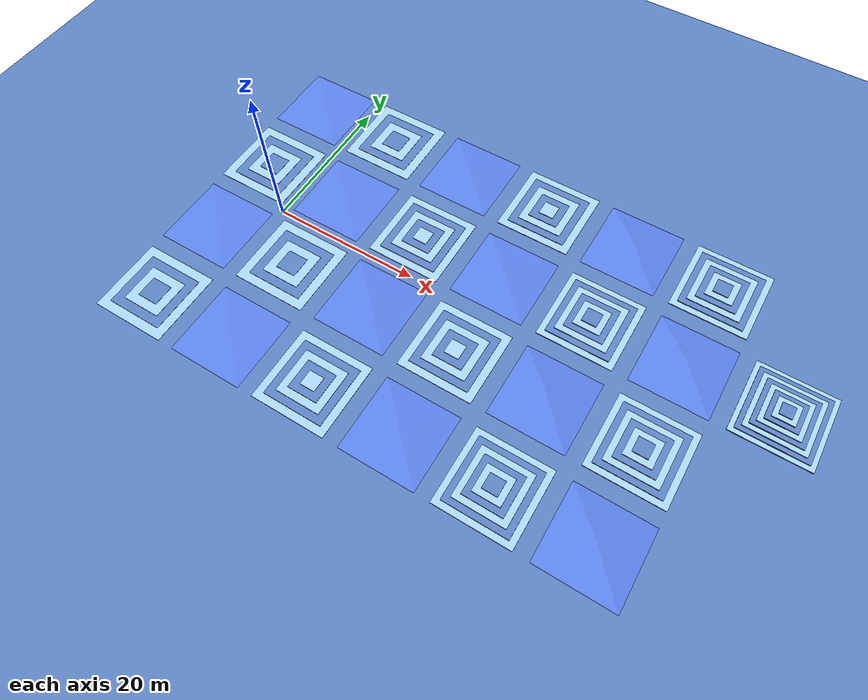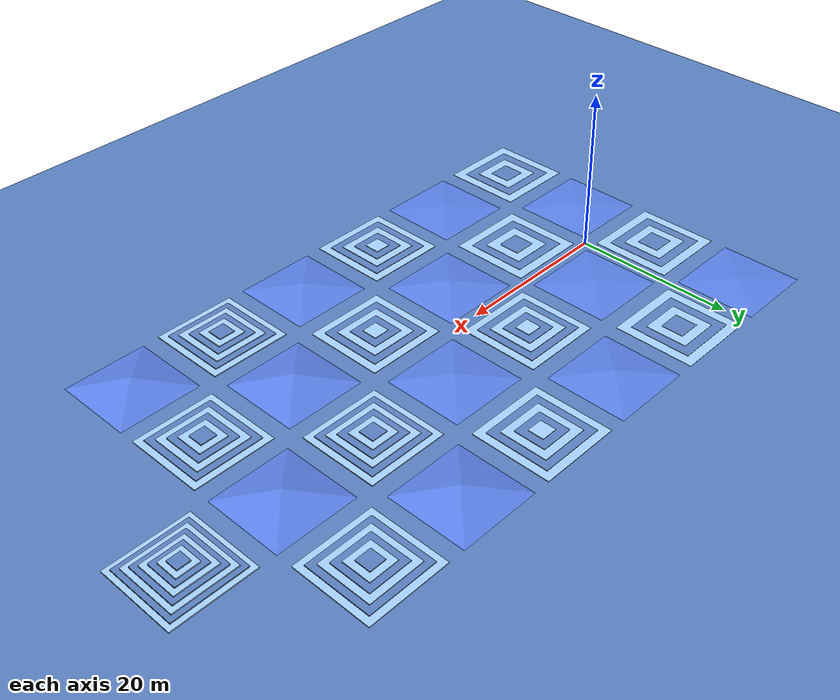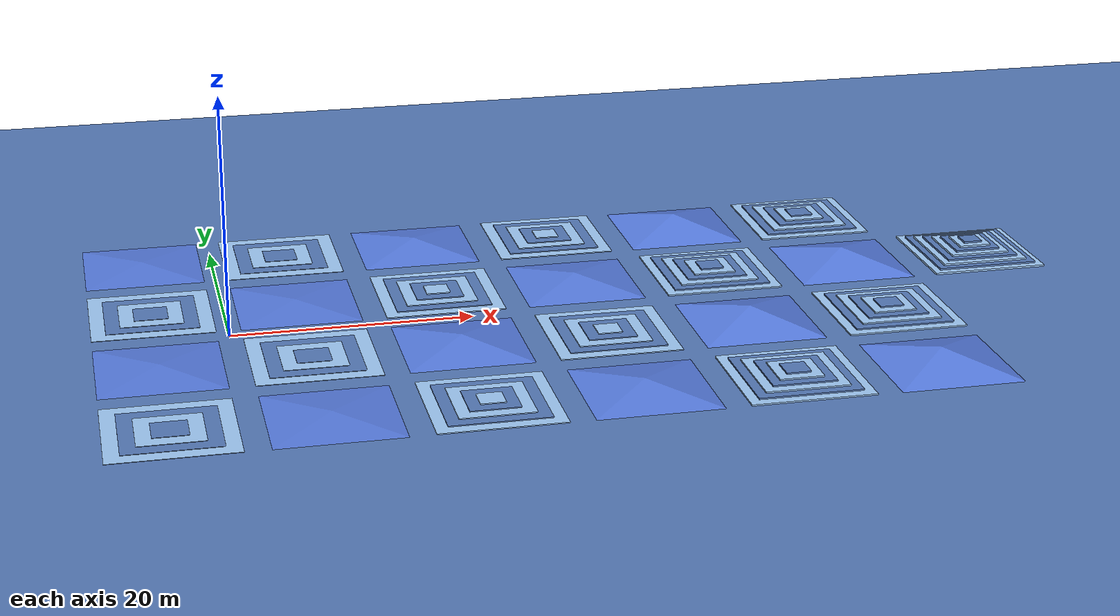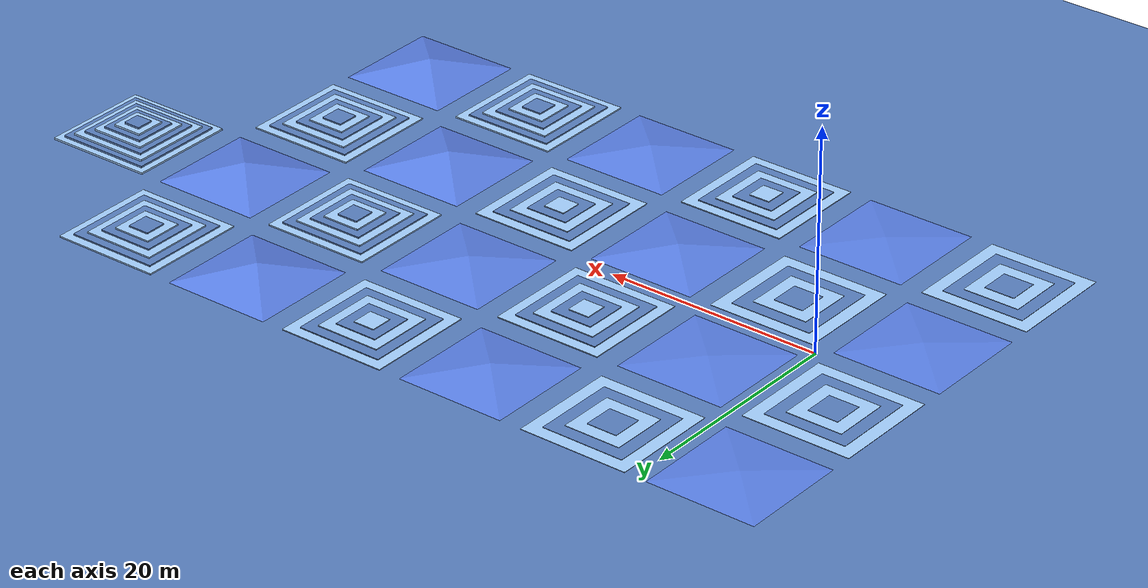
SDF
<sdf version="1.6">
 <world name="mixed_world">
  <model name="ground_plane">
   <static>true</static>
   <link name="link">
    <collision name="collision">
     <geometry><plane><normal>0 0 1</normal><size>500 500</size></plane></geometry>
     <surface><friction><ode><mu>0.8</mu><mu2>0.8</mu2></ode></friction></surface>
    </collision>
    <visual name="visual">
     <geometry><plane><normal>0 0 1</normal><size>500 500</size></plane></geometry>
     <material><ambient>0.35 0.5 0.75 1</ambient><diffuse>0.35 0.5 0.75 1</diffuse></material>
    </visual>
   </link>
  </model>
  <model name="pyramid_lvl0_stairs_1">
   <static>true</static>
   <pose>-6 6 0 0 0 0</pose>
   <link name="s1">
    <pose>0 0 0.02 0 0 0</pose>
    <collision name="c">
     <geometry><box><size>10 10 0.04</size></box></geometry>
     <surface><friction><ode><mu>0.8</mu><mu2>0.8</mu2></ode></friction></surface>
    </collision>
    <visual name="v">
     <geometry><box><size>10 10 0.04</size></box></geometry>
     <material><ambient>0.65 0.82 1 1</ambient><diffuse>0.65 0.82 1 1</diffuse></material>
    </visual>
   </link>
   <link name="s2">
    <pose>0 0 0.06 0 0 0</pose>
    <collision name="c">
     <geometry><box><size>7.6 7.6 0.04</size></box></geometry>
     <surface><friction><ode><mu>0.8</mu><mu2>0.8</mu2></ode></friction></surface>
    </collision>
    <visual name="v">
     <geometry><box><size>7.6 7.6 0.04</size></box></geometry>
     <material><ambient>0.35 0.5 0.75 1</ambient><diffuse>0.35 0.5 0.75 1</diffuse></material>
    </visual>
   </link>
   <link name="s3">
    <pose>0 0 0.10 0 0 0</pose>
    <collision name="c">
     <geometry><box><size>5.2 5.2 0.04</size></box></geometry>
     <surface><friction><ode><mu>0.8</mu><mu2>0.8</mu2></ode></friction></surface>
    </collision>
    <visual name="v">
     <geometry><box><size>5.2 5.2 0.04</size></box></geometry>
     <material><ambient>0.65 0.82 1 1</ambient><diffuse>0.65 0.82 1 1</diffuse></material>
    </visual>
   </link>
   <link name="s4">
    <pose>0 0 0.14 0 0 0</pose>
    <collision name="c">
     <geometry><box><size>2.8 2.8 0.04</size></box></geometry>
     <surface><friction><ode><mu>0.8</mu><mu2>0.8</mu2></ode></friction></surface>
    </collision>
    <visual name="v">
     <geometry><box><size>2.8 2.8 0.04</size></box></geometry>
     <material><ambient>0.35 0.5 0.75 1</ambient><diffuse>0.35 0.5 0.75 1</diffuse></material>
    </visual>
   </link>
  </model>
  <model name="pyramid_lvl0_slope_2">
   <static>true</static>
   <pose>-6 -6 0 0 0 0</pose>
   <link name="slope">
    <collision name="c">
     <geometry><mesh><uri>model://kyon_urdf/meshes/pyramid_slope_05deg_10x10.stl</uri></mesh></geometry>
     <surface><friction><ode><mu>0.7</mu><mu2>0.7</mu2></ode></friction></surface>
    </collision>
    <visual name="v">
     <geometry><mesh><uri>model://kyon_urdf/meshes/pyramid_slope_05deg_10x10.stl</uri></mesh></geometry>
     <material><ambient>0.35 0.5 0.9 1</ambient><diffuse>0.35 0.5 0.9 1</diffuse></material>
    </visual>
   </link>
  </model>
  <model name="pyramid_lvl0_stairs_3">
   <static>true</static>
   <pose>6 -6 0 0 0 0</pose>
   <link name="s1">
    <pose>0 0 0.02 0 0 0</pose>
    <collision name="c">
     <geometry><box><size>10 10 0.04</size></box></geometry>
     <surface><friction><ode><mu>0.8</mu><mu2>0.8</mu2></ode></friction></surface>
    </collision>
    <visual name="v">
     <geometry><box><size>10 10 0.04</size></box></geometry>
     <material><ambient>0.65 0.82 1 1</ambient><diffuse>0.65 0.82 1 1</diffuse></material>
    </visual>
   </link>
   <link name="s2">
    <pose>0 0 0.06 0 0 0</pose>
    <collision name="c">
     <geometry><box><size>7.6 7.6 0.04</size></box></geometry>
     <surface><friction><ode><mu>0.8</mu><mu2>0.8</mu2></ode></friction></surface>
    </collision>
    <visual name="v">
     <geometry><box><size>7.6 7.6 0.04</size></box></geometry>
     <material><ambient>0.35 0.5 0.75 1</ambient><diffuse>0.35 0.5 0.75 1</diffuse></material>
    </visual>
   </link>
   <link name="s3">
    <pose>0 0 0.10 0 0 0</pose>
    <collision name="c">
     <geometry><box><size>5.2 5.2 0.04</size></box></geometry>
     <surface><friction><ode><mu>0.8</mu><mu2>0.8</mu2></ode></friction></surface>
    </collision>
    <visual name="v">
     <geometry><box><size>5.2 5.2 0.04</size></box></geometry>
     <material><ambient>0.65 0.82 1 1</ambient><diffuse>0.65 0.82 1 1</diffuse></material>
    </visual>
   </link>
   <link name="s4">
    <pose>0 0 0.14 0 0 0</pose>
    <collision name="c">
     <geometry><box><size>2.8 2.8 0.04</size></box></geometry>
     <surface><friction><ode><mu>0.8</mu><mu2>0.8</mu2></ode></friction></surface>
    </collision>
    <visual name="v">
     <geometry><box><size>2.8 2.8 0.04</size></box></geometry>
     <material><ambient>0.35 0.5 0.75 1</ambient><diffuse>0.35 0.5 0.75 1</diffuse></material>
    </visual>
   </link>
  </model>
  <model name="pyramid_lvl0_slope_4">
   <static>true</static>
   <pose>6 6 0 0 0 0</pose>
   <link name="slope">
    <collision name="c">
     <geometry><mesh><uri>model://kyon_urdf/meshes/pyramid_slope_05deg_10x10.stl</uri></mesh></geometry>
     <surface><friction><ode><mu>0.7</mu><mu2>0.7</mu2></ode></friction></surface>
    </collision>
    <visual name="v">
     <geometry><mesh><uri>model://kyon_urdf/meshes/pyramid_slope_05deg_10x10.stl</uri></mesh></geometry>
     <material><ambient>0.35 0.5 0.9 1</ambient><diffuse>0.35 0.5 0.9 1</diffuse></material>
    </visual>
   </link>
  </model>
  <model name="pyramid_lvl0_stairs_5">
   <static>true</static>
   <pose>-6 -18 0 0 0 0</pose>
   <link name="s1">
    <pose>0 0 0.02 0 0 0</pose>
    <collision name="c">
     <geometry><box><size>10 10 0.04</size></box></geometry>
     <surface><friction><ode><mu>0.8</mu><mu2>0.8</mu2></ode></friction></surface>
    </collision>
    <visual name="v">
     <geometry><box><size>10 10 0.04</size></box></geometry>
     <material><ambient>0.65 0.82 1 1</ambient><diffuse>0.65 0.82 1 1</diffuse></material>
    </visual>
   </link>
   <link name="s2">
    <pose>0 0 0.06 0 0 0</pose>
    <collision name="c">
     <geometry><box><size>7.6 7.6 0.04</size></box></geometry>
     <surface><friction><ode><mu>0.8</mu><mu2>0.8</mu2></ode></friction></surface>
    </collision>
    <visual name="v">
     <geometry><box><size>7.6 7.6 0.04</size></box></geometry>
     <material><ambient>0.35 0.5 0.75 1</ambient><diffuse>0.35 0.5 0.75 1</diffuse></material>
    </visual>
   </link>
   <link name="s3">
    <pose>0 0 0.10 0 0 0</pose>
    <collision name="c">
     <geometry><box><size>5.2 5.2 0.04</size></box></geometry>
     <surface><friction><ode><mu>0.8</mu><mu2>0.8</mu2></ode></friction></surface>
    </collision>
    <visual name="v">
     <geometry><box><size>5.2 5.2 0.04</size></box></geometry>
     <material><ambient>0.65 0.82 1 1</ambient><diffuse>0.65 0.82 1 1</diffuse></material>
    </visual>
   </link>
   <link name="s4">
    <pose>0 0 0.14 0 0 0</pose>
    <collision name="c">
     <geometry><box><size>2.8 2.8 0.04</size></box></geometry>
     <surface><friction><ode><mu>0.8</mu><mu2>0.8</mu2></ode></friction></surface>
    </collision>
    <visual name="v">
     <geometry><box><size>2.8 2.8 0.04</size></box></geometry>
     <material><ambient>0.35 0.5 0.75 1</ambient><diffuse>0.35 0.5 0.75 1</diffuse></material>
    </visual>
   </link>
  </model>
  <model name="pyramid_lvl0_slope_6">
   <static>true</static>
   <pose>6 -18 0 0 0 0</pose>
   <link name="slope">
    <collision name="c">
     <geometry><mesh><uri>model://kyon_urdf/meshes/pyramid_slope_05deg_10x10.stl</uri></mesh></geometry>
     <surface><friction><ode><mu>0.7</mu><mu2>0.7</mu2></ode></friction></surface>
    </collision>
    <visual name="v">
     <geometry><mesh><uri>model://kyon_urdf/meshes/pyramid_slope_05deg_10x10.stl</uri></mesh></geometry>
     <material><ambient>0.35 0.5 0.9 1</ambient><diffuse>0.35 0.5 0.9 1</diffuse></material>
    </visual>
   </link>
  </model>
  <model name="pyramid_lvl0_stairs_7">
   <static>true</static>
   <pose>6 18 0 0 0 0</pose>
   <link name="s1">
    <pose>0 0 0.02 0 0 0</pose>
    <collision name="c">
     <geometry><box><size>10 10 0.04</size></box></geometry>
     <surface><friction><ode><mu>0.8</mu><mu2>0.8</mu2></ode></friction></surface>
    </collision>
    <visual name="v">
     <geometry><box><size>10 10 0.04</size></box></geometry>
     <material><ambient>0.65 0.82 1 1</ambient><diffuse>0.65 0.82 1 1</diffuse></material>
    </visual>
   </link>
   <link name="s2">
    <pose>0 0 0.06 0 0 0</pose>
    <collision name="c">
     <geometry><box><size>7.6 7.6 0.04</size></box></geometry>
     <surface><friction><ode><mu>0.8</mu><mu2>0.8</mu2></ode></friction></surface>
    </collision>
    <visual name="v">
     <geometry><box><size>7.6 7.6 0.04</size></box></geometry>
     <material><ambient>0.35 0.5 0.75 1</ambient><diffuse>0.35 0.5 0.75 1</diffuse></material>
    </visual>
   </link>
   <link name="s3">
    <pose>0 0 0.10 0 0 0</pose>
    <collision name="c">
     <geometry><box><size>5.2 5.2 0.04</size></box></geometry>
     <surface><friction><ode><mu>0.8</mu><mu2>0.8</mu2></ode></friction></surface>
    </collision>
    <visual name="v">
     <geometry><box><size>5.2 5.2 0.04</size></box></geometry>
     <material><ambient>0.65 0.82 1 1</ambient><diffuse>0.65 0.82 1 1</diffuse></material>
    </visual>
   </link>
   <link name="s4">
    <pose>0 0 0.14 0 0 0</pose>
    <collision name="c">
     <geometry><box><size>2.8 2.8 0.04</size></box></geometry>
     <surface><friction><ode><mu>0.8</mu><mu2>0.8</mu2></ode></friction></surface>
    </collision>
    <visual name="v">
     <geometry><box><size>2.8 2.8 0.04</size></box></geometry>
     <material><ambient>0.35 0.5 0.75 1</ambient><diffuse>0.35 0.5 0.75 1</diffuse></material>
    </visual>
   </link>
  </model>
  <model name="pyramid_lvl0_slope_8">
   <static>true</static>
   <pose>-6 18 0 0 0 0</pose>
   <link name="slope">
    <collision name="c">
     <geometry><mesh><uri>model://kyon_urdf/meshes/pyramid_slope_05deg_10x10.stl</uri></mesh></geometry>
     <surface><friction><ode><mu>0.7</mu><mu2>0.7</mu2></ode></friction></surface>
    </collision>
    <visual name="v">
     <geometry><mesh><uri>model://kyon_urdf/meshes/pyramid_slope_05deg_10x10.stl</uri></mesh></geometry>
     <material><ambient>0.35 0.5 0.9 1</ambient><diffuse>0.35 0.5 0.9 1</diffuse></material>
    </visual>
   </link>
  </model>
  <model name="pyramid_lvl1_stairs_1">
   <static>true</static>
   <pose>18 6 0 0 0 0</pose>
   <link name="s1">
    <pose>0 0 0.04 0 0 0</pose>
    <collision name="c">
     <geometry><box><size>10 10 0.08</size></box></geometry>
     <surface><friction><ode><mu>0.8</mu><mu2>0.8</mu2></ode></friction></surface>
    </collision>
    <visual name="v">
     <geometry><box><size>10 10 0.08</size></box></geometry>
     <material><ambient>0.65 0.82 1 1</ambient><diffuse>0.65 0.82 1 1</diffuse></material>
    </visual>
   </link>
   <link name="s2">
    <pose>0 0 0.12 0 0 0</pose>
    <collision name="c">
     <geometry><box><size>8 8 0.08</size></box></geometry>
     <surface><friction><ode><mu>0.8</mu><mu2>0.8</mu2></ode></friction></surface>
    </collision>
    <visual name="v">
     <geometry><box><size>8 8 0.08</size></box></geometry>
     <material><ambient>0.35 0.5 0.75 1</ambient><diffuse>0.35 0.5 0.75 1</diffuse></material>
    </visual>
   </link>
   <link name="s3">
    <pose>0 0 0.20 0 0 0</pose>
    <collision name="c">
     <geometry><box><size>6 6 0.08</size></box></geometry>
     <surface><friction><ode><mu>0.8</mu><mu2>0.8</mu2></ode></friction></surface>
    </collision>
    <visual name="v">
     <geometry><box><size>6 6 0.08</size></box></geometry>
     <material><ambient>0.65 0.82 1 1</ambient><diffuse>0.65 0.82 1 1</diffuse></material>
    </visual>
   </link>
   <link name="s4">
    <pose>0 0 0.28 0 0 0</pose>
    <collision name="c">
     <geometry><box><size>4 4 0.08</size></box></geometry>
     <surface><friction><ode><mu>0.8</mu><mu2>0.8</mu2></ode></friction></surface>
    </collision>
    <visual name="v">
     <geometry><box><size>4 4 0.08</size></box></geometry>
     <material><ambient>0.35 0.5 0.75 1</ambient><diffuse>0.35 0.5 0.75 1</diffuse></material>
    </visual>
   </link>
   <link name="s5">
    <pose>0 0 0.36 0 0 0</pose>
    <collision name="c">
     <geometry><box><size>2 2 0.08</size></box></geometry>
     <surface><friction><ode><mu>0.8</mu><mu2>0.8</mu2></ode></friction></surface>
    </collision>
    <visual name="v">
     <geometry><box><size>2 2 0.08</size></box></geometry>
     <material><ambient>0.65 0.82 1 1</ambient><diffuse>0.65 0.82 1 1</diffuse></material>
    </visual>
   </link>
  </model>
  <model name="pyramid_lvl1_slope_2">
   <static>true</static>
   <pose>18 -6 0 0 0 0</pose>
   <link name="slope">
    <collision name="c">
     <geometry><mesh><uri>model://kyon_urdf/meshes/pyramid_slope_10deg_10x10.stl</uri></mesh></geometry>
     <surface><friction><ode><mu>0.7</mu><mu2>0.7</mu2></ode></friction></surface>
    </collision>
    <visual name="v">
     <geometry><mesh><uri>model://kyon_urdf/meshes/pyramid_slope_10deg_10x10.stl</uri></mesh></geometry>
     <material><ambient>0.35 0.5 0.9 1</ambient><diffuse>0.35 0.5 0.9 1</diffuse></material>
    </visual>
   </link>
  </model>
  <model name="pyramid_lvl1_stairs_3">
   <static>true</static>
   <pose>30 -6 0 0 0 0</pose>
   <link name="s1">
    <pose>0 0 0.04 0 0 0</pose>
    <collision name="c">
     <geometry><box><size>10 10 0.08</size></box></geometry>
     <surface><friction><ode><mu>0.8</mu><mu2>0.8</mu2></ode></friction></surface>
    </collision>
    <visual name="v">
     <geometry><box><size>10 10 0.08</size></box></geometry>
     <material><ambient>0.65 0.82 1 1</ambient><diffuse>0.65 0.82 1 1</diffuse></material>
    </visual>
   </link>
   <link name="s2">
    <pose>0 0 0.12 0 0 0</pose>
    <collision name="c">
     <geometry><box><size>8 8 0.08</size></box></geometry>
     <surface><friction><ode><mu>0.8</mu><mu2>0.8</mu2></ode></friction></surface>
    </collision>
    <visual name="v">
     <geometry><box><size>8 8 0.08</size></box></geometry>
     <material><ambient>0.35 0.5 0.75 1</ambient><diffuse>0.35 0.5 0.75 1</diffuse></material>
    </visual>
   </link>
   <link name="s3">
    <pose>0 0 0.20 0 0 0</pose>
    <collision name="c">
     <geometry><box><size>6 6 0.08</size></box></geometry>
     <surface><friction><ode><mu>0.8</mu><mu2>0.8</mu2></ode></friction></surface>
    </collision>
    <visual name="v">
     <geometry><box><size>6 6 0.08</size></box></geometry>
     <material><ambient>0.65 0.82 1 1</ambient><diffuse>0.65 0.82 1 1</diffuse></material>
    </visual>
   </link>
   <link name="s4">
    <pose>0 0 0.28 0 0 0</pose>
    <collision name="c">
     <geometry><box><size>4 4 0.08</size></box></geometry>
     <surface><friction><ode><mu>0.8</mu><mu2>0.8</mu2></ode></friction></surface>
    </collision>
    <visual name="v">
     <geometry><box><size>4 4 0.08</size></box></geometry>
     <material><ambient>0.35 0.5 0.75 1</ambient><diffuse>0.35 0.5 0.75 1</diffuse></material>
    </visual>
   </link>
   <link name="s5">
    <pose>0 0 0.36 0 0 0</pose>
    <collision name="c">
     <geometry><box><size>2 2 0.08</size></box></geometry>
     <surface><friction><ode><mu>0.8</mu><mu2>0.8</mu2></ode></friction></surface>
    </collision>
    <visual name="v">
     <geometry><box><size>2 2 0.08</size></box></geometry>
     <material><ambient>0.65 0.82 1 1</ambient><diffuse>0.65 0.82 1 1</diffuse></material>
    </visual>
   </link>
  </model>
  <model name="pyramid_lvl1_slope_4">
   <static>true</static>
   <pose>30 6 0 0 0 0</pose>
   <link name="slope">
    <collision name="c">
     <geometry><mesh><uri>model://kyon_urdf/meshes/pyramid_slope_10deg_10x10.stl</uri></mesh></geometry>
     <surface><friction><ode><mu>0.7</mu><mu2>0.7</mu2></ode></friction></surface>
    </collision>
    <visual name="v">
     <geometry><mesh><uri>model://kyon_urdf/meshes/pyramid_slope_10deg_10x10.stl</uri></mesh></geometry>
     <material><ambient>0.35 0.5 0.9 1</ambient><diffuse>0.35 0.5 0.9 1</diffuse></material>
    </visual>
   </link>
  </model>
  <model name="pyramid_lvl1_slope_5">
   <static>true</static>
   <pose>18 18 0 0 0 0</pose>
   <link name="slope">
    <collision name="c">
     <geometry><mesh><uri>model://kyon_urdf/meshes/pyramid_slope_10deg_10x10.stl</uri></mesh></geometry>
     <surface><friction><ode><mu>0.7</mu><mu2>0.7</mu2></ode></friction></surface>
    </collision>
    <visual name="v">
     <geometry><mesh><uri>model://kyon_urdf/meshes/pyramid_slope_10deg_10x10.stl</uri></mesh></geometry>
     <material><ambient>0.35 0.5 0.9 1</ambient><diffuse>0.35 0.5 0.9 1</diffuse></material>
    </visual>
   </link>
  </model>
  <model name="pyramid_lvl1_stairs_6">
   <static>true</static>
   <pose>30 18 0 0 0 0</pose>
   <link name="s1">
    <pose>0 0 0.04 0 0 0</pose>
    <collision name="c">
     <geometry><box><size>10 10 0.08</size></box></geometry>
     <surface><friction><ode><mu>0.8</mu><mu2>0.8</mu2></ode></friction></surface>
    </collision>
    <visual name="v">
     <geometry><box><size>10 10 0.08</size></box></geometry>
     <material><ambient>0.65 0.82 1 1</ambient><diffuse>0.65 0.82 1 1</diffuse></material>
    </visual>
   </link>
   <link name="s2">
    <pose>0 0 0.12 0 0 0</pose>
    <collision name="c">
     <geometry><box><size>8 8 0.08</size></box></geometry>
     <surface><friction><ode><mu>0.8</mu><mu2>0.8</mu2></ode></friction></surface>
    </collision>
    <visual name="v">
     <geometry><box><size>8 8 0.08</size></box></geometry>
     <material><ambient>0.35 0.5 0.75 1</ambient><diffuse>0.35 0.5 0.75 1</diffuse></material>
    </visual>
   </link>
   <link name="s3">
    <pose>0 0 0.20 0 0 0</pose>
    <collision name="c">
     <geometry><box><size>6 6 0.08</size></box></geometry>
     <surface><friction><ode><mu>0.8</mu><mu2>0.8</mu2></ode></friction></surface>
    </collision>
    <visual name="v">
     <geometry><box><size>6 6 0.08</size></box></geometry>
     <material><ambient>0.65 0.82 1 1</ambient><diffuse>0.65 0.82 1 1</diffuse></material>
    </visual>
   </link>
   <link name="s4">
    <pose>0 0 0.28 0 0 0</pose>
    <collision name="c">
     <geometry><box><size>4 4 0.08</size></box></geometry>
     <surface><friction><ode><mu>0.8</mu><mu2>0.8</mu2></ode></friction></surface>
    </collision>
    <visual name="v">
     <geometry><box><size>4 4 0.08</size></box></geometry>
     <material><ambient>0.35 0.5 0.75 1</ambient><diffuse>0.35 0.5 0.75 1</diffuse></material>
    </visual>
   </link>
   <link name="s5">
    <pose>0 0 0.36 0 0 0</pose>
    <collision name="c">
     <geometry><box><size>2 2 0.08</size></box></geometry>
     <surface><friction><ode><mu>0.8</mu><mu2>0.8</mu2></ode></friction></surface>
    </collision>
    <visual name="v">
     <geometry><box><size>2 2 0.08</size></box></geometry>
     <material><ambient>0.65 0.82 1 1</ambient><diffuse>0.65 0.82 1 1</diffuse></material>
    </visual>
   </link>
  </model>
  <model name="pyramid_lvl1_stairs_7">
   <static>true</static>
   <pose>18 -18 0 0 0 0</pose>
   <link name="s1">
    <pose>0 0 0.04 0 0 0</pose>
    <collision name="c">
     <geometry><box><size>10 10 0.08</size></box></geometry>
     <surface><friction><ode><mu>0.8</mu><mu2>0.8</mu2></ode></friction></surface>
    </collision>
    <visual name="v">
     <geometry><box><size>10 10 0.08</size></box></geometry>
     <material><ambient>0.65 0.82 1 1</ambient><diffuse>0.65 0.82 1 1</diffuse></material>
    </visual>
   </link>
   <link name="s2">
    <pose>0 0 0.12 0 0 0</pose>
    <collision name="c">
     <geometry><box><size>8 8 0.08</size></box></geometry>
     <surface><friction><ode><mu>0.8</mu><mu2>0.8</mu2></ode></friction></surface>
    </collision>
    <visual name="v">
     <geometry><box><size>8 8 0.08</size></box></geometry>
     <material><ambient>0.35 0.5 0.75 1</ambient><diffuse>0.35 0.5 0.75 1</diffuse></material>
    </visual>
   </link>
   <link name="s3">
    <pose>0 0 0.20 0 0 0</pose>
    <collision name="c">
     <geometry><box><size>6 6 0.08</size></box></geometry>
     <surface><friction><ode><mu>0.8</mu><mu2>0.8</mu2></ode></friction></surface>
    </collision>
    <visual name="v">
     <geometry><box><size>6 6 0.08</size></box></geometry>
     <material><ambient>0.65 0.82 1 1</ambient><diffuse>0.65 0.82 1 1</diffuse></material>
    </visual>
   </link>
   <link name="s4">
    <pose>0 0 0.28 0 0 0</pose>
    <collision name="c">
     <geometry><box><size>4 4 0.08</size></box></geometry>
     <surface><friction><ode><mu>0.8</mu><mu2>0.8</mu2></ode></friction></surface>
    </collision>
    <visual name="v">
     <geometry><box><size>4 4 0.08</size></box></geometry>
     <material><ambient>0.35 0.5 0.75 1</ambient><diffuse>0.35 0.5 0.75 1</diffuse></material>
    </visual>
   </link>
   <link name="s5">
    <pose>0 0 0.36 0 0 0</pose>
    <collision name="c">
     <geometry><box><size>2 2 0.08</size></box></geometry>
     <surface><friction><ode><mu>0.8</mu><mu2>0.8</mu2></ode></friction></surface>
    </collision>
    <visual name="v">
     <geometry><box><size>2 2 0.08</size></box></geometry>
     <material><ambient>0.65 0.82 1 1</ambient><diffuse>0.65 0.82 1 1</diffuse></material>
    </visual>
   </link>
  </model>
  <model name="pyramid_lvl1_slope_8">
   <static>true</static>
   <pose>30 -18 0 0 0 0</pose>
   <link name="slope">
    <collision name="c">
     <geometry><mesh><uri>model://kyon_urdf/meshes/pyramid_slope_10deg_10x10.stl</uri></mesh></geometry>
     <surface><friction><ode><mu>0.7</mu><mu2>0.7</mu2></ode></friction></surface>
    </collision>
    <visual name="v">
     <geometry><mesh><uri>model://kyon_urdf/meshes/pyramid_slope_10deg_10x10.stl</uri></mesh></geometry>
     <material><ambient>0.35 0.5 0.9 1</ambient><diffuse>0.35 0.5 0.9 1</diffuse></material>
    </visual>
   </link>
  </model>
  <model name="pyramid_lvl2_slope_1">
   <static>true</static>
   <pose>42 -6 0 0 0 0</pose>
   <link name="slope">
    <collision name="c">
     <geometry><mesh><uri>model://kyon_urdf/meshes/pyramid_slope_15deg_10x10.stl</uri></mesh></geometry>
     <surface><friction><ode><mu>0.7</mu><mu2>0.7</mu2></ode></friction></surface>
    </collision>
    <visual name="v">
     <geometry><mesh><uri>model://kyon_urdf/meshes/pyramid_slope_15deg_10x10.stl</uri></mesh></geometry>
     <material><ambient>0.35 0.5 0.9 1</ambient><diffuse>0.35 0.5 0.9 1</diffuse></material>
    </visual>
   </link>
  </model>
  <model name="pyramid_lvl2_stairs_2">
   <static>true</static>
   <pose>42 6 0 0 0 0</pose>
   <link name="s1">
    <pose>0 0 0.06 0 0 0</pose>
    <collision name="c">
     <geometry><box><size>10 10 0.12</size></box></geometry>
     <surface><friction><ode><mu>0.8</mu><mu2>0.8</mu2></ode></friction></surface>
    </collision>
    <visual name="v">
     <geometry><box><size>10 10 0.12</size></box></geometry>
     <material><ambient>0.65 0.82 1 1</ambient><diffuse>0.65 0.82 1 1</diffuse></material>
    </visual>
   </link>
   <link name="s2">
    <pose>0 0 0.18 0 0 0</pose>
    <collision name="c">
     <geometry><box><size>8.4 8.4 0.12</size></box></geometry>
     <surface><friction><ode><mu>0.8</mu><mu2>0.8</mu2></ode></friction></surface>
    </collision>
    <visual name="v">
     <geometry><box><size>8.4 8.4 0.12</size></box></geometry>
     <material><ambient>0.35 0.5 0.75 1</ambient><diffuse>0.35 0.5 0.75 1</diffuse></material>
    </visual>
   </link>
   <link name="s3">
    <pose>0 0 0.30 0 0 0</pose>
    <collision name="c">
     <geometry><box><size>6.8 6.8 0.12</size></box></geometry>
     <surface><friction><ode><mu>0.8</mu><mu2>0.8</mu2></ode></friction></surface>
    </collision>
    <visual name="v">
     <geometry><box><size>6.8 6.8 0.12</size></box></geometry>
     <material><ambient>0.65 0.82 1 1</ambient><diffuse>0.65 0.82 1 1</diffuse></material>
    </visual>
   </link>
   <link name="s4">
    <pose>0 0 0.42 0 0 0</pose>
    <collision name="c">
     <geometry><box><size>5.2 5.2 0.12</size></box></geometry>
     <surface><friction><ode><mu>0.8</mu><mu2>0.8</mu2></ode></friction></surface>
    </collision>
    <visual name="v">
     <geometry><box><size>5.2 5.2 0.12</size></box></geometry>
     <material><ambient>0.35 0.5 0.75 1</ambient><diffuse>0.35 0.5 0.75 1</diffuse></material>
    </visual>
   </link>
   <link name="s5">
    <pose>0 0 0.54 0 0 0</pose>
    <collision name="c">
     <geometry><box><size>3.6 3.6 0.12</size></box></geometry>
     <surface><friction><ode><mu>0.8</mu><mu2>0.8</mu2></ode></friction></surface>
    </collision>
    <visual name="v">
     <geometry><box><size>3.6 3.6 0.12</size></box></geometry>
     <material><ambient>0.65 0.82 1 1</ambient><diffuse>0.65 0.82 1 1</diffuse></material>
    </visual>
   </link>
   <link name="s6">
    <pose>0 0 0.66 0 0 0</pose>
    <collision name="c">
     <geometry><box><size>2 2 0.12</size></box></geometry>
     <surface><friction><ode><mu>0.8</mu><mu2>0.8</mu2></ode></friction></surface>
    </collision>
    <visual name="v">
     <geometry><box><size>2 2 0.12</size></box></geometry>
     <material><ambient>0.35 0.5 0.75 1</ambient><diffuse>0.35 0.5 0.75 1</diffuse></material>
    </visual>
   </link>
  </model>
  <model name="pyramid_lvl2_stairs_3">
   <static>true</static>
   <pose>54 -6 0 0 0 0</pose>
   <link name="s1">
    <pose>0 0 0.06 0 0 0</pose>
    <collision name="c">
     <geometry><box><size>10 10 0.12</size></box></geometry>
     <surface><friction><ode><mu>0.8</mu><mu2>0.8</mu2></ode></friction></surface>
    </collision>
    <visual name="v">
     <geometry><box><size>10 10 0.12</size></box></geometry>
     <material><ambient>0.65 0.82 1 1</ambient><diffuse>0.65 0.82 1 1</diffuse></material>
    </visual>
   </link>
   <link name="s2">
    <pose>0 0 0.18 0 0 0</pose>
    <collision name="c">
     <geometry><box><size>8.4 8.4 0.12</size></box></geometry>
     <surface><friction><ode><mu>0.8</mu><mu2>0.8</mu2></ode></friction></surface>
    </collision>
    <visual name="v">
     <geometry><box><size>8.4 8.4 0.12</size></box></geometry>
     <material><ambient>0.35 0.5 0.75 1</ambient><diffuse>0.35 0.5 0.75 1</diffuse></material>
    </visual>
   </link>
   <link name="s3">
    <pose>0 0 0.30 0 0 0</pose>
    <collision name="c">
     <geometry><box><size>6.8 6.8 0.12</size></box></geometry>
     <surface><friction><ode><mu>0.8</mu><mu2>0.8</mu2></ode></friction></surface>
    </collision>
    <visual name="v">
     <geometry><box><size>6.8 6.8 0.12</size></box></geometry>
     <material><ambient>0.65 0.82 1 1</ambient><diffuse>0.65 0.82 1 1</diffuse></material>
    </visual>
   </link>
   <link name="s4">
    <pose>0 0 0.42 0 0 0</pose>
    <collision name="c">
     <geometry><box><size>5.2 5.2 0.12</size></box></geometry>
     <surface><friction><ode><mu>0.8</mu><mu2>0.8</mu2></ode></friction></surface>
    </collision>
    <visual name="v">
     <geometry><box><size>5.2 5.2 0.12</size></box></geometry>
     <material><ambient>0.35 0.5 0.75 1</ambient><diffuse>0.35 0.5 0.75 1</diffuse></material>
    </visual>
   </link>
   <link name="s5">
    <pose>0 0 0.54 0 0 0</pose>
    <collision name="c">
     <geometry><box><size>3.6 3.6 0.12</size></box></geometry>
     <surface><friction><ode><mu>0.8</mu><mu2>0.8</mu2></ode></friction></surface>
    </collision>
    <visual name="v">
     <geometry><box><size>3.6 3.6 0.12</size></box></geometry>
     <material><ambient>0.65 0.82 1 1</ambient><diffuse>0.65 0.82 1 1</diffuse></material>
    </visual>
   </link>
   <link name="s6">
    <pose>0 0 0.66 0 0 0</pose>
    <collision name="c">
     <geometry><box><size>2 2 0.12</size></box></geometry>
     <surface><friction><ode><mu>0.8</mu><mu2>0.8</mu2></ode></friction></surface>
    </collision>
    <visual name="v">
     <geometry><box><size>2 2 0.12</size></box></geometry>
     <material><ambient>0.35 0.5 0.75 1</ambient><diffuse>0.35 0.5 0.75 1</diffuse></material>
    </visual>
   </link>
  </model>
  <model name="pyramid_lvl2_slope_4">
   <static>true</static>
   <pose>54 6 0 0 0 0</pose>
   <link name="slope">
    <collision name="c">
     <geometry><mesh><uri>model://kyon_urdf/meshes/pyramid_slope_15deg_10x10.stl</uri></mesh></geometry>
     <surface><friction><ode><mu>0.7</mu><mu2>0.7</mu2></ode></friction></surface>
    </collision>
    <visual name="v">
     <geometry><mesh><uri>model://kyon_urdf/meshes/pyramid_slope_15deg_10x10.stl</uri></mesh></geometry>
     <material><ambient>0.35 0.5 0.9 1</ambient><diffuse>0.35 0.5 0.9 1</diffuse></material>
    </visual>
   </link>
  </model>
  <model name="pyramid_lvl2_slope_5">
   <static>true</static>
   <pose>42 18 0 0 0 0</pose>
   <link name="slope">
    <collision name="c">
     <geometry><mesh><uri>model://kyon_urdf/meshes/pyramid_slope_15deg_10x10.stl</uri></mesh></geometry>
     <surface><friction><ode><mu>0.7</mu><mu2>0.7</mu2></ode></friction></surface>
    </collision>
    <visual name="v">
     <geometry><mesh><uri>model://kyon_urdf/meshes/pyramid_slope_15deg_10x10.stl</uri></mesh></geometry>
     <material><ambient>0.35 0.5 0.9 1</ambient><diffuse>0.35 0.5 0.9 1</diffuse></material>
    </visual>
   </link>
  </model>
  <model name="pyramid_lvl2_stairs_6">
   <static>true</static>
   <pose>54 18 0 0 0 0</pose>
   <link name="s1">
    <pose>0 0 0.06 0 0 0</pose>
    <collision name="c">
     <geometry><box><size>10 10 0.12</size></box></geometry>
     <surface><friction><ode><mu>0.8</mu><mu2>0.8</mu2></ode></friction></surface>
    </collision>
    <visual name="v">
     <geometry><box><size>10 10 0.12</size></box></geometry>
     <material><ambient>0.65 0.82 1 1</ambient><diffuse>0.65 0.82 1 1</diffuse></material>
    </visual>
   </link>
   <link name="s2">
    <pose>0 0 0.18 0 0 0</pose>
    <collision name="c">
     <geometry><box><size>8.4 8.4 0.12</size></box></geometry>
     <surface><friction><ode><mu>0.8</mu><mu2>0.8</mu2></ode></friction></surface>
    </collision>
    <visual name="v">
     <geometry><box><size>8.4 8.4 0.12</size></box></geometry>
     <material><ambient>0.35 0.5 0.75 1</ambient><diffuse>0.35 0.5 0.75 1</diffuse></material>
    </visual>
   </link>
   <link name="s3">
    <pose>0 0 0.30 0 0 0</pose>
    <collision name="c">
     <geometry><box><size>6.8 6.8 0.12</size></box></geometry>
     <surface><friction><ode><mu>0.8</mu><mu2>0.8</mu2></ode></friction></surface>
    </collision>
    <visual name="v">
     <geometry><box><size>6.8 6.8 0.12</size></box></geometry>
     <material><ambient>0.65 0.82 1 1</ambient><diffuse>0.65 0.82 1 1</diffuse></material>
    </visual>
   </link>
   <link name="s4">
    <pose>0 0 0.42 0 0 0</pose>
    <collision name="c">
     <geometry><box><size>5.2 5.2 0.12</size></box></geometry>
     <surface><friction><ode><mu>0.8</mu><mu2>0.8</mu2></ode></friction></surface>
    </collision>
    <visual name="v">
     <geometry><box><size>5.2 5.2 0.12</size></box></geometry>
     <material><ambient>0.35 0.5 0.75 1</ambient><diffuse>0.35 0.5 0.75 1</diffuse></material>
    </visual>
   </link>
   <link name="s5">
    <pose>0 0 0.54 0 0 0</pose>
    <collision name="c">
     <geometry><box><size>3.6 3.6 0.12</size></box></geometry>
     <surface><friction><ode><mu>0.8</mu><mu2>0.8</mu2></ode></friction></surface>
    </collision>
    <visual name="v">
     <geometry><box><size>3.6 3.6 0.12</size></box></geometry>
     <material><ambient>0.65 0.82 1 1</ambient><diffuse>0.65 0.82 1 1</diffuse></material>
    </visual>
   </link>
   <link name="s6">
    <pose>0 0 0.66 0 0 0</pose>
    <collision name="c">
     <geometry><box><size>2 2 0.12</size></box></geometry>
     <surface><friction><ode><mu>0.8</mu><mu2>0.8</mu2></ode></friction></surface>
    </collision>
    <visual name="v">
     <geometry><box><size>2 2 0.12</size></box></geometry>
     <material><ambient>0.35 0.5 0.75 1</ambient><diffuse>0.35 0.5 0.75 1</diffuse></material>
    </visual>
   </link>
  </model>
  <model name="pyramid_lvl2_stairs_7">
   <static>true</static>
   <pose>42 -18 0 0 0 0</pose>
   <link name="s1">
    <pose>0 0 0.06 0 0 0</pose>
    <collision name="c">
     <geometry><box><size>10 10 0.12</size></box></geometry>
     <surface><friction><ode><mu>0.8</mu><mu2>0.8</mu2></ode></friction></surface>
    </collision>
    <visual name="v">
     <geometry><box><size>10 10 0.12</size></box></geometry>
     <material><ambient>0.65 0.82 1 1</ambient><diffuse>0.65 0.82 1 1</diffuse></material>
    </visual>
   </link>
   <link name="s2">
    <pose>0 0 0.18 0 0 0</pose>
    <collision name="c">
     <geometry><box><size>8.4 8.4 0.12</size></box></geometry>
     <surface><friction><ode><mu>0.8</mu><mu2>0.8</mu2></ode></friction></surface>
    </collision>
    <visual name="v">
     <geometry><box><size>8.4 8.4 0.12</size></box></geometry>
     <material><ambient>0.35 0.5 0.75 1</ambient><diffuse>0.35 0.5 0.75 1</diffuse></material>
    </visual>
   </link>
   <link name="s3">
    <pose>0 0 0.30 0 0 0</pose>
    <collision name="c">
     <geometry><box><size>6.8 6.8 0.12</size></box></geometry>
     <surface><friction><ode><mu>0.8</mu><mu2>0.8</mu2></ode></friction></surface>
    </collision>
    <visual name="v">
     <geometry><box><size>6.8 6.8 0.12</size></box></geometry>
     <material><ambient>0.65 0.82 1 1</ambient><diffuse>0.65 0.82 1 1</diffuse></material>
    </visual>
   </link>
   <link name="s4">
    <pose>0 0 0.42 0 0 0</pose>
    <collision name="c">
     <geometry><box><size>5.2 5.2 0.12</size></box></geometry>
     <surface><friction><ode><mu>0.8</mu><mu2>0.8</mu2></ode></friction></surface>
    </collision>
    <visual name="v">
     <geometry><box><size>5.2 5.2 0.12</size></box></geometry>
     <material><ambient>0.35 0.5 0.75 1</ambient><diffuse>0.35 0.5 0.75 1</diffuse></material>
    </visual>
   </link>
   <link name="s5">
    <pose>0 0 0.54 0 0 0</pose>
    <collision name="c">
     <geometry><box><size>3.6 3.6 0.12</size></box></geometry>
     <surface><friction><ode><mu>0.8</mu><mu2>0.8</mu2></ode></friction></surface>
    </collision>
    <visual name="v">
     <geometry><box><size>3.6 3.6 0.12</size></box></geometry>
     <material><ambient>0.65 0.82 1 1</ambient><diffuse>0.65 0.82 1 1</diffuse></material>
    </visual>
   </link>
   <link name="s6">
    <pose>0 0 0.66 0 0 0</pose>
    <collision name="c">
     <geometry><box><size>2 2 0.12</size></box></geometry>
     <surface><friction><ode><mu>0.8</mu><mu2>0.8</mu2></ode></friction></surface>
    </collision>
    <visual name="v">
     <geometry><box><size>2 2 0.12</size></box></geometry>
     <material><ambient>0.35 0.5 0.75 1</ambient><diffuse>0.35 0.5 0.75 1</diffuse></material>
    </visual>
   </link>
  </model>
  <model name="pyramid_lvl2_slope_8">
   <static>true</static>
   <pose>54 -18 0 0 0 0</pose>
   <link name="slope">
    <collision name="c">
     <geometry><mesh><uri>model://kyon_urdf/meshes/pyramid_slope_15deg_10x10.stl</uri></mesh></geometry>
     <surface><friction><ode><mu>0.7</mu><mu2>0.7</mu2></ode></friction></surface>
    </collision>
    <visual name="v">
     <geometry><mesh><uri>model://kyon_urdf/meshes/pyramid_slope_15deg_10x10.stl</uri></mesh></geometry>
     <material><ambient>0.35 0.5 0.9 1</ambient><diffuse>0.35 0.5 0.9 1</diffuse></material>
    </visual>
   </link>
  </model>
  <model name="pyramid_lvl3_stairs_1">
   <static>true</static>
   <pose>66 6 0 0 0 0</pose>
   <link name="s1">
    <pose>0 0 0.08 0 0 0</pose>
    <collision name="c">
     <geometry><box><size>10 10 0.16</size></box></geometry>
     <surface><friction><ode><mu>0.8</mu><mu2>0.8</mu2></ode></friction></surface>
    </collision>
    <visual name="v">
     <geometry><box><size>10 10 0.16</size></box></geometry>
     <material><ambient>0.65 0.82 1 1</ambient><diffuse>0.65 0.82 1 1</diffuse></material>
    </visual>
   </link>
   <link name="s2">
    <pose>0 0 0.24 0 0 0</pose>
    <collision name="c">
     <geometry><box><size>8.8 8.8 0.16</size></box></geometry>
     <surface><friction><ode><mu>0.8</mu><mu2>0.8</mu2></ode></friction></surface>
    </collision>
    <visual name="v">
     <geometry><box><size>8.8 8.8 0.16</size></box></geometry>
     <material><ambient>0.35 0.5 0.75 1</ambient><diffuse>0.35 0.5 0.75 1</diffuse></material>
    </visual>
   </link>
   <link name="s3">
    <pose>0 0 0.40 0 0 0</pose>
    <collision name="c">
     <geometry><box><size>7.6 7.6 0.16</size></box></geometry>
     <surface><friction><ode><mu>0.8</mu><mu2>0.8</mu2></ode></friction></surface>
    </collision>
    <visual name="v">
     <geometry><box><size>7.6 7.6 0.16</size></box></geometry>
     <material><ambient>0.65 0.82 1 1</ambient><diffuse>0.65 0.82 1 1</diffuse></material>
    </visual>
   </link>
   <link name="s4">
    <pose>0 0 0.56 0 0 0</pose>
    <collision name="c">
     <geometry><box><size>6.4 6.4 0.16</size></box></geometry>
     <surface><friction><ode><mu>0.8</mu><mu2>0.8</mu2></ode></friction></surface>
    </collision>
    <visual name="v">
     <geometry><box><size>6.4 6.4 0.16</size></box></geometry>
     <material><ambient>0.35 0.5 0.75 1</ambient><diffuse>0.35 0.5 0.75 1</diffuse></material>
    </visual>
   </link>
   <link name="s5">
    <pose>0 0 0.72 0 0 0</pose>
    <collision name="c">
     <geometry><box><size>5.2 5.2 0.16</size></box></geometry>
     <surface><friction><ode><mu>0.8</mu><mu2>0.8</mu2></ode></friction></surface>
    </collision>
    <visual name="v">
     <geometry><box><size>5.2 5.2 0.16</size></box></geometry>
     <material><ambient>0.65 0.82 1 1</ambient><diffuse>0.65 0.82 1 1</diffuse></material>
    </visual>
   </link>
   <link name="s6">
    <pose>0 0 0.88 0 0 0</pose>
    <collision name="c">
     <geometry><box><size>4 4 0.16</size></box></geometry>
     <surface><friction><ode><mu>0.8</mu><mu2>0.8</mu2></ode></friction></surface>
    </collision>
    <visual name="v">
     <geometry><box><size>4 4 0.16</size></box></geometry>
     <material><ambient>0.35 0.5 0.75 1</ambient><diffuse>0.35 0.5 0.75 1</diffuse></material>
    </visual>
   </link>
   <link name="s7">
    <pose>0 0 1.04 0 0 0</pose>
    <collision name="c">
     <geometry><box><size>2.8 2.8 0.16</size></box></geometry>
     <surface><friction><ode><mu>0.8</mu><mu2>0.8</mu2></ode></friction></surface>
    </collision>
    <visual name="v">
     <geometry><box><size>2.8 2.8 0.16</size></box></geometry>
     <material><ambient>0.65 0.82 1 1</ambient><diffuse>0.65 0.82 1 1</diffuse></material>
    </visual>
   </link>
   <link name="s8">
    <pose>0 0 1.20 0 0 0</pose>
    <collision name="c">
     <geometry><box><size>1.6 1.6 0.16</size></box></geometry>
     <surface><friction><ode><mu>0.8</mu><mu2>0.8</mu2></ode></friction></surface>
    </collision>
    <visual name="v">
     <geometry><box><size>1.6 1.6 0.16</size></box></geometry>
     <material><ambient>0.35 0.5 0.75 1</ambient><diffuse>0.35 0.5 0.75 1</diffuse></material>
    </visual>
   </link>
  </model>
 </world>
</sdf>
